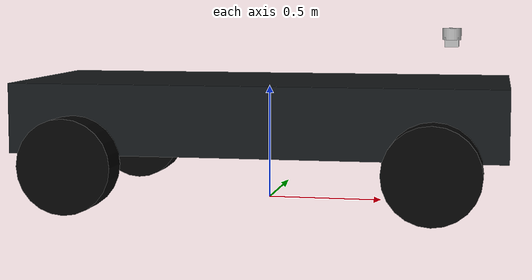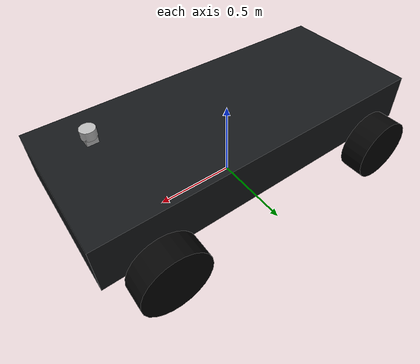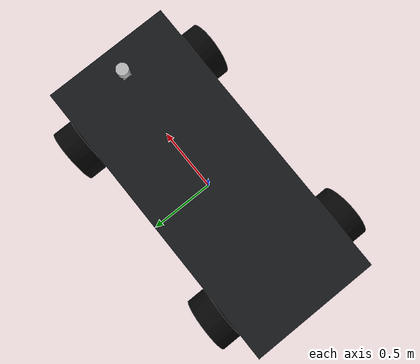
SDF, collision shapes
<?xml version="1.0"?>
<sdf version="1.6">
  <model name="dual_pad_rover">
    <link name="base_link">
      <pose>0 0 0 0 0 0</pose>

      <inertial>
        <pose>0 0 0.40 0 0 0</pose>
        <mass>45.0</mass>
        <inertia>
          <ixx>4.0</ixx>
          <ixy>0.0</ixy>
          <ixz>0.0</ixz>
          <iyy>18.0</iyy>
          <iyz>0.0</iyz>
          <izz>20.0</izz>
        </inertia>
      </inertial>

      <!-- ── 충돌 박스 ──────────────────────────────────────────── -->
      <collision name="body_collision">
        <pose>0 0 0.38 0 0 0</pose>
        <geometry>
          <box>
            <size>2.10 0.90 0.30</size>
          </box>
        </geometry>
      </collision>

      <!-- ── 시각 요소 ──────────────────────────────────────────── -->
      <visual name="lower_chassis_visual">
        <pose>0 0 0.34 0 0 0</pose>
        <geometry>
          <box>
            <size>2.36 0.98 0.16</size>
          </box>
        </geometry>
        <material>
          <ambient>0.08 0.09 0.10 1</ambient>
          <diffuse>0.08 0.09 0.10 1</diffuse>
          <specular>0.15 0.15 0.15 1</specular>
        </material>
      </visual>

      <visual name="upper_hull_visual">
        <pose>-0.10 0 0.50 0 0 0</pose>
        <geometry>
          <box>
            <size>2.04 0.96 0.24</size>
          </box>
        </geometry>
        <material>
          <ambient>0.72 0.76 0.70 1</ambient>
          <diffuse>0.72 0.76 0.70 1</diffuse>
          <specular>0.25 0.25 0.22 1</specular>
        </material>
      </visual>

      <visual name="front_payload_bay_visual">
        <pose>0.84 0 0.56 0 0 0</pose>
        <geometry>
          <box>
            <size>0.30 0.50 0.20</size>
          </box>
        </geometry>
        <material>
          <ambient>0.84 0.86 0.82 1</ambient>
          <diffuse>0.84 0.86 0.82 1</diffuse>
          <specular>0.3 0.3 0.28 1</specular>
        </material>
      </visual>

      <visual name="front_bumper_visual">
        <pose>1.22 0 0.32 0 0 0</pose>
        <geometry>
          <box>
            <size>0.08 1.10 0.14</size>
          </box>
        </geometry>
        <material>
          <ambient>0.95 0.36 0.08 1</ambient>
          <diffuse>0.95 0.36 0.08 1</diffuse>
          <specular>0.2 0.12 0.08 1</specular>
        </material>
      </visual>

      <visual name="rear_bumper_visual">
        <pose>-1.22 0 0.32 0 0 0</pose>
        <geometry>
          <box>
            <size>0.08 1.10 0.14</size>
          </box>
        </geometry>
        <material>
          <ambient>0.95 0.36 0.08 1</ambient>
          <diffuse>0.95 0.36 0.08 1</diffuse>
          <specular>0.2 0.12 0.08 1</specular>
        </material>
      </visual>

      <visual name="camera_body_visual">
        <pose>1.10 0 0.62 0 0 0</pose>
        <geometry>
          <box>
            <size>0.10 0.20 0.12</size>
          </box>
        </geometry>
        <material>
          <ambient>0.03 0.03 0.035 1</ambient>
          <diffuse>0.03 0.03 0.035 1</diffuse>
          <specular>0.35 0.35 0.35 1</specular>
        </material>
      </visual>

      <visual name="camera_lens_visual">
        <pose>1.18 0 0.62 0 1.5707 0</pose>
        <geometry>
          <cylinder>
            <radius>0.055</radius>
            <length>0.04</length>
          </cylinder>
        </geometry>
        <material>
          <ambient>0.0 0.025 0.05 1</ambient>
          <diffuse>0.0 0.06 0.12 1</diffuse>
          <specular>0.8 0.9 1.0 1</specular>
        </material>
      </visual>

      <!-- ══ ArUco Landing Pad ID=0 (rear) — UAV1 착륙 ══════════ -->
      <visual name="rear_aruco_pad_id0_visual">
        <pose>-0.55 0 0.627 0 0 0</pose>
        <geometry>
          <plane>
            <normal>0 0 1</normal>
            <size>0.32 0.32</size>
          </plane>
        </geometry>
        <material>
          <diffuse>1 1 1 1</diffuse>
          <specular>0 0 0 1</specular>
          <pbr>
            <metal>
              <albedo_map>model://arucotag/arucotag.png</albedo_map>
              <metalness>0.0</metalness>
              <roughness>1.0</roughness>
            </metal>
          </pbr>
        </material>
      </visual>

      <!-- 패드 배경 (흰색 판) ID=0 -->
      <visual name="rear_pad_bg_visual">
        <pose>-0.55 0 0.623 0 0 0</pose>
        <geometry>
          <box>
            <size>0.38 0.38 0.004</size>
          </box>
        </geometry>
        <material>
          <ambient>0.95 0.95 0.95 1</ambient>
          <diffuse>0.95 0.95 0.95 1</diffuse>
          <specular>0 0 0 1</specular>
        </material>
      </visual>

      <!-- ══ ArUco Landing Pad ID=1 (front) — UAV2 착륙 ══════════ -->
      <visual name="front_aruco_pad_id1_visual">
        <pose>0.55 0 0.627 0 0 0</pose>
        <geometry>
          <plane>
            <normal>0 0 1</normal>
            <size>0.32 0.32</size>
          </plane>
        </geometry>
        <material>
          <diffuse>1 1 1 1</diffuse>
          <specular>0 0 0 1</specular>
          <pbr>
            <metal>
              <albedo_map>model://dual_pad_rover/aruco_marker_id1.png</albedo_map>
              <metalness>0.0</metalness>
              <roughness>1.0</roughness>
            </metal>
          </pbr>
        </material>
      </visual>

      <!-- 패드 배경 (흰색 판) ID=1 -->
      <visual name="front_pad_bg_visual">
        <pose>0.55 0 0.623 0 0 0</pose>
        <geometry>
          <box>
            <size>0.38 0.38 0.004</size>
          </box>
        </geometry>
        <material>
          <ambient>0.95 0.95 0.95 1</ambient>
          <diffuse>0.95 0.95 0.95 1</diffuse>
          <specular>0 0 0 1</specular>
        </material>
      </visual>

      <!-- ── 센서들 ─────────────────────────────────────────────── -->
      <sensor name="air_pressure_sensor" type="air_pressure">
        <gz_frame_id>base_link</gz_frame_id>
        <always_on>1</always_on>
        <update_rate>50</update_rate>
        <air_pressure>
          <pressure>
            <noise type="gaussian">
              <mean>0</mean>
              <stddev>3</stddev>
            </noise>
          </pressure>
        </air_pressure>
      </sensor>

      <sensor name="magnetometer_sensor" type="magnetometer">
        <gz_frame_id>base_link</gz_frame_id>
        <always_on>1</always_on>
        <update_rate>100</update_rate>
        <magnetometer>
          <x><noise type="gaussian"><stddev>0.0001</stddev></noise></x>
          <y><noise type="gaussian"><stddev>0.0001</stddev></noise></y>
          <z><noise type="gaussian"><stddev>0.0001</stddev></noise></z>
        </magnetometer>
      </sensor>

      <sensor name="imu_sensor" type="imu">
        <gz_frame_id>base_link</gz_frame_id>
        <always_on>1</always_on>
        <update_rate>250</update_rate>
        <imu>
          <angular_velocity>
            <x><noise type="gaussian"><mean>0.0</mean><stddev>0.0008726646</stddev></noise></x>
            <y><noise type="gaussian"><mean>0.0</mean><stddev>0.0008726646</stddev></noise></y>
            <z><noise type="gaussian"><mean>0.0</mean><stddev>0.0008726646</stddev></noise></z>
          </angular_velocity>
          <linear_acceleration>
            <x><noise type="gaussian"><mean>0.0</mean><stddev>0.00637</stddev></noise></x>
            <y><noise type="gaussian"><mean>0.0</mean><stddev>0.00637</stddev></noise></y>
            <z><noise type="gaussian"><mean>0.0</mean><stddev>0.00686</stddev></noise></z>
          </linear_acceleration>
        </imu>
      </sensor>

      <sensor name="navsat_sensor" type="navsat">
        <gz_frame_id>base_link</gz_frame_id>
        <always_on>1</always_on>
        <update_rate>30</update_rate>
      </sensor>
    </link>

    <!-- ── LiDAR 링크 ──────────────────────────────────────────── -->
    <link name="lidar_sensor_link">
      <pose relative_to="base_link">0.80 0 0.68 0 0 0</pose>
      <inertial>
        <pose>0 0 0.0435 0 0 0</pose>
        <mass>0.37</mass>
        <inertia>
          <ixx>0.0003443775</ixx>
          <ixy>0</ixy>
          <ixz>0</ixz>
          <iyy>0.0003443775</iyy>
          <iyz>0</iyz>
          <izz>0.000222</izz>
        </inertia>
      </inertial>
      <collision name="collision_base">
        <pose>0 0 0.0205 0 0 0</pose>
        <geometry>
          <box><size>0.06 0.06 0.041</size></box>
        </geometry>
      </collision>
      <collision name="collision_head">
        <pose>0 0 0.055 0 0 0</pose>
        <geometry>
          <cylinder><radius>0.04</radius><length>0.05</length></cylinder>
        </geometry>
      </collision>
      <visual name="visual">
        <geometry>
          <mesh><uri>model://lidar_2d_v2/meshes/lidar_2d_v2.dae</uri></mesh>
        </geometry>
      </visual>

      <sensor name="lidar" type="gpu_lidar">
        <gz_frame_id>lidar_sensor_link</gz_frame_id>
        <pose>0 0 0.055 0 0 0</pose>
        <update_rate>20</update_rate>
        <always_on>1</always_on>
        <visualize>false</visualize>
        <ray>
          <scan>
            <horizontal>
              <samples>1024</samples>
              <resolution>1</resolution>
              <min_angle>-3.14159265</min_angle>
              <max_angle>3.14159265</max_angle>
            </horizontal>
            <vertical>
              <samples>1</samples>
              <resolution>1</resolution>
              <min_angle>0.0</min_angle>
              <max_angle>0.0</max_angle>
            </vertical>
          </scan>
          <range>
            <min>0.1</min>
            <max>30.0</max>
            <resolution>0.01</resolution>
          </range>
          <noise>
            <type>gaussian</type>
            <mean>0.0</mean>
            <stddev>0.002</stddev>
          </noise>
        </ray>
      </sensor>
    </link>

    <joint name="lidar_sensor_joint" type="fixed">
      <parent>base_link</parent>
      <child>lidar_sensor_link</child>
    </joint>

    <!-- ── 바퀴 링크 ──────────────────────────────────────────── -->
    <!-- lf = left-front, lb = left-back, rf = right-front, rb = right-back -->
    <!-- x=±0.75 (wheelbase/2), y=±0.55 (track/2), z=0.20 (wheel radius)  -->

    <link name="lf_wheel_link">
      <pose>0.75 0.55 0.20 0 0 0</pose>
      <inertial>
        <pose>0 0 0 1.57079632679 0 0</pose>
        <mass>2.0</mass>
        <inertia>
          <ixx>0.024</ixx><ixy>0</ixy><ixz>0</ixz>
          <iyy>0.024</iyy><iyz>0</iyz>
          <izz>0.040</izz>
        </inertia>
      </inertial>
      <collision name="collision">
        <pose>0 0 0 1.57079632679 0 0</pose>
        <geometry>
          <cylinder><radius>0.20</radius><length>0.15</length></cylinder>
        </geometry>
        <surface>
          <friction>
            <ode>
              <mu>1.5</mu><mu2>1.5</mu2>
              <fdir1>1 0 0</fdir1>
              <slip1>0.0</slip1><slip2>0.0</slip2>
            </ode>
          </friction>
        </surface>
      </collision>
      <visual name="tire_visual">
        <pose>0 0 0 1.57079632679 0 0</pose>
        <geometry>
          <cylinder><radius>0.20</radius><length>0.15</length></cylinder>
        </geometry>
        <material>
          <ambient>0.015 0.015 0.015 1</ambient>
          <diffuse>0.015 0.015 0.015 1</diffuse>
          <specular>0.08 0.08 0.08 1</specular>
        </material>
      </visual>
      <visual name="hub_visual">
        <pose>0 0.075 0 1.57079632679 0 0</pose>
        <geometry>
          <cylinder><radius>0.09</radius><length>0.018</length></cylinder>
        </geometry>
        <material>
          <ambient>0.72 0.72 0.68 1</ambient>
          <diffuse>0.72 0.72 0.68 1</diffuse>
          <specular>0.35 0.35 0.32 1</specular>
        </material>
      </visual>
    </link>

    <link name="lb_wheel_link">
      <pose>-0.75 0.55 0.20 0 0 0</pose>
      <inertial>
        <pose>0 0 0 1.57079632679 0 0</pose>
        <mass>2.0</mass>
        <inertia>
          <ixx>0.024</ixx><ixy>0</ixy><ixz>0</ixz>
          <iyy>0.024</iyy><iyz>0</iyz>
          <izz>0.040</izz>
        </inertia>
      </inertial>
      <collision name="collision">
        <pose>0 0 0 1.57079632679 0 0</pose>
        <geometry>
          <cylinder><radius>0.20</radius><length>0.15</length></cylinder>
        </geometry>
        <surface>
          <friction>
            <ode>
              <mu>1.5</mu><mu2>1.5</mu2>
              <fdir1>1 0 0</fdir1>
              <slip1>0.0</slip1><slip2>0.0</slip2>
            </ode>
          </friction>
        </surface>
      </collision>
      <visual name="tire_visual">
        <pose>0 0 0 1.57079632679 0 0</pose>
        <geometry>
          <cylinder><radius>0.20</radius><length>0.15</length></cylinder>
        </geometry>
        <material>
          <ambient>0.015 0.015 0.015 1</ambient>
          <diffuse>0.015 0.015 0.015 1</diffuse>
          <specular>0.08 0.08 0.08 1</specular>
        </material>
      </visual>
      <visual name="hub_visual">
        <pose>0 0.075 0 1.57079632679 0 0</pose>
        <geometry>
          <cylinder><radius>0.09</radius><length>0.018</length></cylinder>
        </geometry>
        <material>
          <ambient>0.72 0.72 0.68 1</ambient>
          <diffuse>0.72 0.72 0.68 1</diffuse>
          <specular>0.35 0.35 0.32 1</specular>
        </material>
      </visual>
    </link>

    <link name="rf_wheel_link">
      <pose>0.75 -0.55 0.20 0 0 0</pose>
      <inertial>
        <pose>0 0 0 1.57079632679 0 0</pose>
        <mass>2.0</mass>
        <inertia>
          <ixx>0.024</ixx><ixy>0</ixy><ixz>0</ixz>
          <iyy>0.024</iyy><iyz>0</iyz>
          <izz>0.040</izz>
        </inertia>
      </inertial>
      <collision name="collision">
        <pose>0 0 0 1.57079632679 0 0</pose>
        <geometry>
          <cylinder><radius>0.20</radius><length>0.15</length></cylinder>
        </geometry>
        <surface>
          <friction>
            <ode>
              <mu>1.5</mu><mu2>1.5</mu2>
              <fdir1>1 0 0</fdir1>
              <slip1>0.0</slip1><slip2>0.0</slip2>
            </ode>
          </friction>
        </surface>
      </collision>
      <visual name="tire_visual">
        <pose>0 0 0 1.57079632679 0 0</pose>
        <geometry>
          <cylinder><radius>0.20</radius><length>0.15</length></cylinder>
        </geometry>
        <material>
          <ambient>0.015 0.015 0.015 1</ambient>
          <diffuse>0.015 0.015 0.015 1</diffuse>
          <specular>0.08 0.08 0.08 1</specular>
        </material>
      </visual>
      <visual name="hub_visual">
        <pose>0 -0.075 0 1.57079632679 0 0</pose>
        <geometry>
          <cylinder><radius>0.09</radius><length>0.018</length></cylinder>
        </geometry>
        <material>
          <ambient>0.72 0.72 0.68 1</ambient>
          <diffuse>0.72 0.72 0.68 1</diffuse>
          <specular>0.35 0.35 0.32 1</specular>
        </material>
      </visual>
    </link>

    <link name="rb_wheel_link">
      <pose>-0.75 -0.55 0.20 0 0 0</pose>
      <inertial>
        <pose>0 0 0 1.57079632679 0 0</pose>
        <mass>2.0</mass>
        <inertia>
          <ixx>0.024</ixx><ixy>0</ixy><ixz>0</ixz>
          <iyy>0.024</iyy><iyz>0</iyz>
          <izz>0.040</izz>
        </inertia>
      </inertial>
      <collision name="collision">
        <pose>0 0 0 1.57079632679 0 0</pose>
        <geometry>
          <cylinder><radius>0.20</radius><length>0.15</length></cylinder>
        </geometry>
        <surface>
          <friction>
            <ode>
              <mu>1.5</mu><mu2>1.5</mu2>
              <fdir1>1 0 0</fdir1>
              <slip1>0.0</slip1><slip2>0.0</slip2>
            </ode>
          </friction>
        </surface>
      </collision>
      <visual name="tire_visual">
        <pose>0 0 0 1.57079632679 0 0</pose>
        <geometry>
          <cylinder><radius>0.20</radius><length>0.15</length></cylinder>
        </geometry>
        <material>
          <ambient>0.015 0.015 0.015 1</ambient>
          <diffuse>0.015 0.015 0.015 1</diffuse>
          <specular>0.08 0.08 0.08 1</specular>
        </material>
      </visual>
      <visual name="hub_visual">
        <pose>0 -0.075 0 1.57079632679 0 0</pose>
        <geometry>
          <cylinder><radius>0.09</radius><length>0.018</length></cylinder>
        </geometry>
        <material>
          <ambient>0.72 0.72 0.68 1</ambient>
          <diffuse>0.72 0.72 0.68 1</diffuse>
          <specular>0.35 0.35 0.32 1</specular>
        </material>
      </visual>
    </link>

    <!-- ── 스티어링 링크 ──────────────────────────────────────── -->
    <link name="lf_steering_link">
      <pose relative_to="lf_wheel_link">0 0 0 0 0 0</pose>
      <inertial>
        <mass>0.20</mass>
        <inertia>
          <ixx>0.00012</ixx><iyy>0.00012</iyy><izz>0.00012</izz>
        </inertia>
      </inertial>
    </link>

    <link name="rf_steering_link">
      <pose relative_to="rf_wheel_link">0 0 0 0 0 0</pose>
      <inertial>
        <mass>0.20</mass>
        <inertia>
          <ixx>0.00012</ixx><iyy>0.00012</iyy><izz>0.00012</izz>
        </inertia>
      </inertial>
    </link>

    <!-- ── 조인트 ─────────────────────────────────────────────── -->
    <joint name="lf_steering_joint" type="revolute">
      <parent>base_link</parent>
      <child>lf_steering_link</child>
      <pose relative_to="lf_steering_link">0 0 0 0 0 0</pose>
      <axis>
        <xyz>0 0 1</xyz>
        <limit><lower>-0.5236</lower><upper>0.5236</upper></limit>
        <dynamics><damping>0.8</damping><friction>0.02</friction></dynamics>
        <use_parent_model_frame>1</use_parent_model_frame>
      </axis>
    </joint>

    <joint name="rf_steering_joint" type="revolute">
      <parent>base_link</parent>
      <child>rf_steering_link</child>
      <pose relative_to="rf_steering_link">0 0 0 0 0 0</pose>
      <axis>
        <xyz>0 0 1</xyz>
        <limit><lower>-0.5236</lower><upper>0.5236</upper></limit>
        <dynamics><damping>0.8</damping><friction>0.02</friction></dynamics>
        <use_parent_model_frame>1</use_parent_model_frame>
      </axis>
    </joint>

    <joint name="front_left_wheel_joint" type="revolute">
      <child>lf_wheel_link</child>
      <parent>lf_steering_link</parent>
      <axis>
        <xyz>0 1 0</xyz>
        <limit><lower>-1e+16</lower><upper>1e+16</upper></limit>
        <dynamics><spring_reference>0</spring_reference><spring_stiffness>0</spring_stiffness></dynamics>
        <use_parent_model_frame>1</use_parent_model_frame>
      </axis>
    </joint>

    <joint name="rear_left_wheel_joint" type="revolute">
      <child>lb_wheel_link</child>
      <parent>base_link</parent>
      <axis>
        <xyz>0 1 0</xyz>
        <limit><lower>-1e+16</lower><upper>1e+16</upper></limit>
        <dynamics><spring_reference>0</spring_reference><spring_stiffness>0</spring_stiffness></dynamics>
        <use_parent_model_frame>1</use_parent_model_frame>
      </axis>
    </joint>

    <joint name="front_right_wheel_joint" type="revolute">
      <child>rf_wheel_link</child>
      <parent>rf_steering_link</parent>
      <axis>
        <xyz>0 -1 0</xyz>
        <limit><lower>-1e+16</lower><upper>1e+16</upper></limit>
        <dynamics><spring_reference>0</spring_reference><spring_stiffness>0</spring_stiffness></dynamics>
        <use_parent_model_frame>1</use_parent_model_frame>
      </axis>
    </joint>

    <joint name="rear_right_wheel_joint" type="revolute">
      <child>rb_wheel_link</child>
      <parent>base_link</parent>
      <axis>
        <xyz>0 -1 0</xyz>
        <limit><lower>-1e+16</lower><upper>1e+16</upper></limit>
        <dynamics><spring_reference>0</spring_reference><spring_stiffness>0</spring_stiffness></dynamics>
        <use_parent_model_frame>1</use_parent_model_frame>
      </axis>
    </joint>

    <static>0</static>

    <!-- ── 플러그인 ─────────────────────────────────────────────── -->
    <plugin filename="gz-sim-joint-controller-system"
            name="gz::sim::systems::JointController">
      <joint_name>rear_left_wheel_joint</joint_name>
      <sub_topic>command/motor_speed</sub_topic>
      <control_type>velocity</control_type>
      <use_actuator_msg>true</use_actuator_msg>
      <actuator_number>0</actuator_number>
      <p_gain>15.0</p_gain>
    </plugin>

    <plugin filename="gz-sim-joint-controller-system"
            name="gz::sim::systems::JointController">
      <joint_name>rear_right_wheel_joint</joint_name>
      <sub_topic>command/motor_speed</sub_topic>
      <control_type>velocity</control_type>
      <use_actuator_msg>true</use_actuator_msg>
      <actuator_number>0</actuator_number>
      <p_gain>15.0</p_gain>
    </plugin>

    <plugin filename="gz-sim-joint-position-controller-system"
            name="gz::sim::systems::JointPositionController">
      <joint_name>lf_steering_joint</joint_name>
      <sub_topic>servo_0</sub_topic>
      <p_gain>30</p_gain>
      <i_gain>0</i_gain>
      <d_gain>1.0</d_gain>
    </plugin>

    <plugin filename="gz-sim-joint-position-controller-system"
            name="gz::sim::systems::JointPositionController">
      <joint_name>rf_steering_joint</joint_name>
      <sub_topic>servo_0</sub_topic>
      <p_gain>30</p_gain>
      <i_gain>0</i_gain>
      <d_gain>1.0</d_gain>
    </plugin>

    <plugin filename="gz-sim-joint-state-publisher-system"
            name="gz::sim::systems::JointStatePublisher">
      <joint_name>front_left_wheel_joint</joint_name>
      <joint_name>rear_left_wheel_joint</joint_name>
      <joint_name>front_right_wheel_joint</joint_name>
      <joint_name>rear_right_wheel_joint</joint_name>
      <joint_name>lf_steering_joint</joint_name>
      <joint_name>rf_steering_joint</joint_name>
    </plugin>
  </model>
</sdf>
